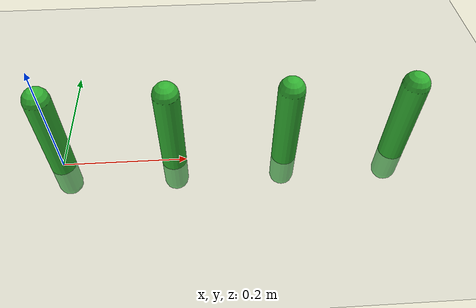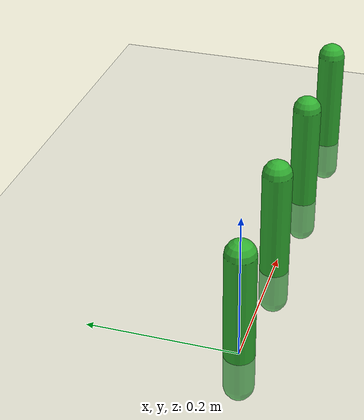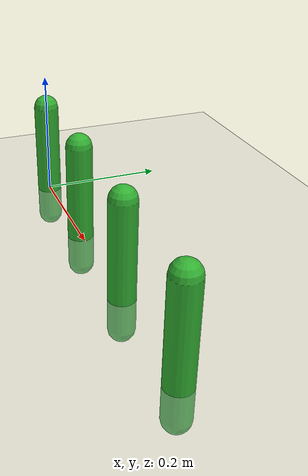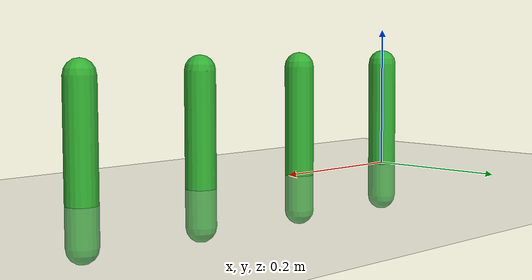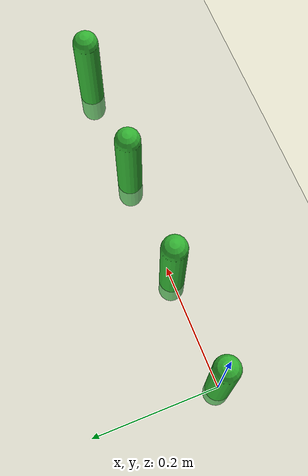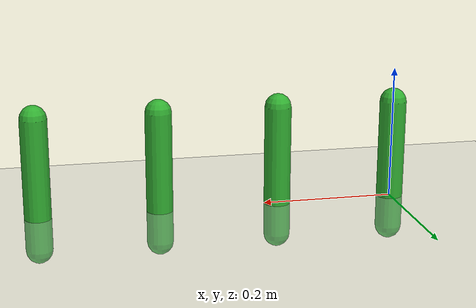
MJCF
<mujoco model="simple_snake">
  <option timestep="0.005" gravity="0 0 -9.81"/>
  <compiler angle="degree" coordinate="local" inertiafromgeom="true"/>
  <default>
    <geom type="capsule" size="0.02 0.1" rgba="0.2 0.7 0.2 1" friction="0.7 0.1 0.1"/>
    <joint limited="true" range="-30 30" damping="0.05" stiffness="1"/>
  </default>

  <worldbody>
    <light diffuse="1 1 1" pos="0 0 3" dir="0 0 -1"/>
    <geom type="plane" size="2 2 0.1" rgba="0.8 0.8 0.8 1"/>

    <body name="seg0" pos="0 0 0.05">
      <joint name="root_free" type="free"/>
      <geom/>

      <body name="seg1" pos="0.18 0 0">
        <joint name="j1" type="hinge" axis="0 0 1"/>
        <geom/>

        <body name="seg2" pos="0.18 0 0">
          <joint name="j2" type="hinge" axis="0 0 1"/>
          <geom/>

          <body name="seg3" pos="0.18 0 0">
            <joint name="j3" type="hinge" axis="0 0 1"/>
            <geom/>
          </body>
        </body>
      </body>
    </body>
  </worldbody>

  <actuator>
    <position name="a1" joint="j1" kp="20"/>
    <position name="a2" joint="j2" kp="20"/>
    <position name="a3" joint="j3" kp="20"/>
  </actuator>
</mujoco>

<mujoco model="screw_snake">
  <compiler angle="degree" coordinate="local" autolimits="true"/>
  <option timestep="0.002" gravity="0 0 -9.81" integrator="RK4" iterations="100"/>

  <!-- Materials and defaults -->
  <default>
    <geom rgba="0.8 0.8 0.8 1" condim="3" friction="1.0 0.005 0.0005" solref="0.005 1" solimp="0.9 0.9 0.01"/>
    <joint armature="0.002" damping="0.1" frictionloss="0.0" limited="false"/>
    <motor ctrllimited="false"/>
  </default>

  <asset>
    <!-- no external meshes; keep it simple -->
  </asset>

  <worldbody>
    <!-- Ground -->
    <geom name="ground" type="plane" size="5 5 0.1" rgba="0.2 0.25 0.3 1" friction="1.2 0.005 0.0005"/>

    <!-- Base (free) body for the snake -->
    <body name="snake_base" pos="0 0 0.08">
      <!-- Free joint so the whole thing can move -->
      <joint name="root_free" type="free"/>

      <!-- A lightweight chassis that holds the two coaxial screws -->
      <geom name="chassis" type="box" size="0.12 0.05 0.02" pos="0 0 0.02" rgba="0.3 0.35 0.4 1" mass="0.2"/>

      <!-- Right-hand screw (positive x half) -->
      <body name="screw_right" pos="0.15 0 0">
        <!-- Rotates about x-axis -->
        <joint name="jr" type="hinge" axis="1 0 0" pos="0 0 0" damping="0.002"/>

        <!-- Core cylinder -->
        <geom name="core_r" type="cylinder" fromto="-0.15 0 0  0.15 0 0" size="0.05" rgba="0.8 0.1 0.1 1" mass="0.3" friction="1.0 0.01 0.001"/>

        <!-- Helical ridges to approximate a right-hand thread -->
        <!-- We place N short capsules around the cylinder in a helix -->
        <!-- Parameters: radius ~ 0.055, capsule length ~ 0.06 -->
        <!-- Right-hand: angle increases with +x -->
        <!-- Tweak N, P (pitch) for visual/physical fidelity -->
        <!-- NOTE: duplicated programmatically would be nicer, but here it's explicit to stay single-file -->
        <!-- Generate 24 segments along x, each with 6 ribs around circumference -->
        <!-- We’ll hand-write a smaller set for readability; increase counts if you want more bite -->
        <geom type="capsule" fromto="-0.12 0.055 0  -0.06 0.055 0" size="0.006" rgba="0.9 0.4 0.4 1"/>
        <geom type="capsule" fromto="-0.09 0.039 0.039  -0.03 0.039 0.039" size="0.006" rgba="0.9 0.4 0.4 1"/>
        <geom type="capsule" fromto="-0.06 0 0.055  0 0 0.055" size="0.006" rgba="0.9 0.4 0.4 1"/>
        <geom type="capsule" fromto="-0.03 -0.039 0.039  0.03 -0.039 0.039" size="0.006" rgba="0.9 0.4 0.4 1"/>
        <geom type="capsule" fromto="0  -0.055 0  0.06 -0.055 0" size="0.006" rgba="0.9 0.4 0.4 1"/>
        <geom type="capsule" fromto="0.03 -0.039 -0.039  0.09 -0.039 -0.039" size="0.006" rgba="0.9 0.4 0.4 1"/>
        <geom type="capsule" fromto="0.06 0 -0.055  0.12 0 -0.055" size="0.006" rgba="0.9 0.4 0.4 1"/>

        <!-- End caps (visual) -->
        <geom type="sphere" pos="-0.15 0 0" size="0.05" rgba="0.8 0.1 0.1 1" mass="0.01"/>
        <geom type="sphere" pos="0.15 0 0" size="0.05" rgba="0.8 0.1 0.1 1" mass="0.01"/>
      </body>

      <!-- Left-hand screw (negative x half) -->
      <body name="screw_left" pos="-0.15 0 0">
        <joint name="jl" type="hinge" axis="1 0 0" pos="0 0 0" damping="0.002"/>

        <!-- Core cylinder -->
        <geom name="core_l" type="cylinder" fromto="-0.15 0 0  0.15 0 0" size="0.05" rgba="0.1 0.6 0.9 1" mass="0.3" friction="1.0 0.01 0.001"/>

        <!-- Helical ridges to approximate a left-hand thread (opposite helix) -->
        <!-- Left-hand: angle decreases with +x -->
        <geom type="capsule" fromto="-0.12 -0.055 0  -0.06 -0.055 0" size="0.006" rgba="0.4 0.7 1 1"/>
        <geom type="capsule" fromto="-0.09 -0.039 0.039  -0.03 -0.039 0.039" size="0.006" rgba="0.4 0.7 1 1"/>
        <geom type="capsule" fromto="-0.06 0 0.055  0 0 0.055" size="0.006" rgba="0.4 0.7 1 1"/>
        <geom type="capsule" fromto="-0.03 0.039 0.039  0.03 0.039 0.039" size="0.006" rgba="0.4 0.7 1 1"/>
        <geom type="capsule" fromto="0  0.055 0  0.06 0.055 0" size="0.006" rgba="0.4 0.7 1 1"/>
        <geom type="capsule" fromto="0.03 0.039 -0.039  0.09 0.039 -0.039" size="0.006" rgba="0.4 0.7 1 1"/>
        <geom type="capsule" fromto="0.06 0 -0.055  0.12 0 -0.055" size="0.006" rgba="0.4 0.7 1 1"/>

        <geom type="sphere" pos="-0.15 0 0" size="0.05" rgba="0.1 0.6 0.9 1" mass="0.01"/>
        <geom type="sphere" pos="0.15 0 0" size="0.05" rgba="0.1 0.6 0.9 1" mass="0.01"/>
      </body>

    </body>
  </worldbody>

  <!-- Equality constraint to gear the two hinge joints together with opposite sign.
       jr + 1*jl = 0  => jl = -jr -->
  <equality>
  <!-- jr + 1*jl = 0  =>  jl = -jr -->
  <joint name="counter_rotate" joint1="jr" joint2="jl" gear="1"/>
</equality>
  <!-- Actuation: one motor on jr; jl follows via the gear constraint -->
  <actuator>
    <!-- A velocity servo is most stable for continuous rotation locomotion.
         ctrl value is desired angular velocity (rad/s) about +x for jr -->
    <velocity name="motor" joint="jr" kv="50"/>
  </actuator>

  <!-- A simple camera to watch the motion -->
  <visual>
    <map znear="0.005" zfar="20"/>
  </visual>
  <keyframe>
    <key name="start" qpos="0 0 0   1 0 0 0   0 0 0  0 0"/>
  </keyframe>
</mujoco>
